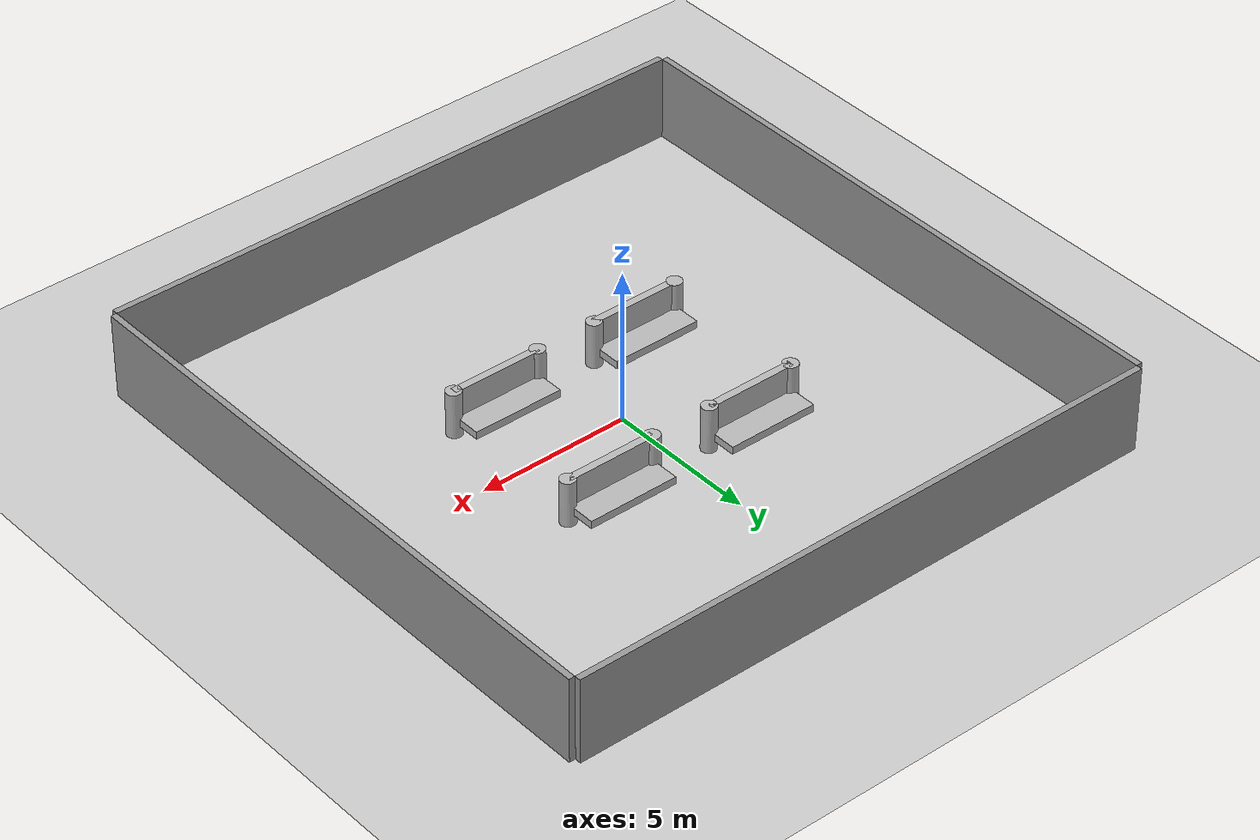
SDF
<sdf version="1.7">
 <world name="default">
  <light name="sun" type="directional">
   <pose>0 0 10 0 -0 0</pose>
   <diffuse>0.8 0.8 0.8 1</diffuse>
   <specular>0.2 0.2 0.2 1</specular>
   <attenuation>
    <range>1000</range>
    <constant>0.9</constant>
    <linear>0.01</linear>
    <quadratic>0.001</quadratic>
   </attenuation>
   <direction>-0.5 0.1 -0.9</direction>
   <spot><inner_angle>0</inner_angle><outer_angle>0</outer_angle><falloff>0</falloff></spot>
  </light>
  <model name="ground_plane">
   <static>1</static>
   <link name="link">
    <collision name="collision">
     <geometry><plane><normal>0 0 1</normal><size>100 100</size></plane></geometry>
     <surface><friction><ode><mu>100</mu><mu2>50</mu2></ode></friction></surface>
    </collision>
    <visual name="visual">
     <cast_shadows>0</cast_shadows>
     <geometry><plane><normal>0 0 1</normal><size>100 100</size></plane></geometry>
     <material>
      <script><uri>file://media/materials/scripts/gazebo.material</uri><name>Gazebo/Grey</name></script>
     </material>
    </visual>
   </link>
  </model>
  <gravity>0 0 -9.8</gravity>
  <magnetic_field>6e-06 2.3e-05 -4.2e-05</magnetic_field>
  <atmosphere type="adiabatic"/>
  <physics type="ode">
   <max_step_size>0.001</max_step_size>
   <real_time_factor>1</real_time_factor>
   <real_time_update_rate>1000</real_time_update_rate>
  </physics>
  <scene><ambient>0.4 0.4 0.4 1</ambient><background>0.7 0.7 0.7 1</background><shadows>1</shadows></scene>
  <spherical_coordinates>
   <surface_model>EARTH_WGS84</surface_model>
   <latitude_deg>0</latitude_deg>
   <longitude_deg>0</longitude_deg>
   <elevation>0</elevation>
   <heading_deg>0</heading_deg>
  </spherical_coordinates>
  <model name="grey_wall_west">
   <static>1</static>
   <link name="link">
    <pose>0 0 1.4 0 -0 0</pose>
    <collision name="collision"><geometry><box><size>20 0.2 2.8</size></box></geometry></collision>
    <visual name="visual">
     <cast_shadows>0</cast_shadows>
     <geometry><box><size>20 0.2 2.8</size></box></geometry>
     <material>
      <script>
       <uri>model://grey_wall/materials/scripts</uri>
       <uri>model://grey_wall/materials/textures</uri>
       <name>vrc/grey_wall</name>
      </script>
     </material>
    </visual>
   </link>
   <pose>0 10.1 0 0 -0 0</pose>
  </model>
  <model name="grey_wall_east">
   <static>1</static>
   <link name="link">
    <pose>0 0 1.4 0 -0 0</pose>
    <collision name="collision"><geometry><box><size>20 0.2 2.8</size></box></geometry></collision>
    <visual name="visual">
     <cast_shadows>0</cast_shadows>
     <geometry><box><size>20 0.2 2.8</size></box></geometry>
     <material>
      <script>
       <uri>model://grey_wall/materials/scripts</uri>
       <uri>model://grey_wall/materials/textures</uri>
       <name>vrc/grey_wall</name>
      </script>
     </material>
    </visual>
   </link>
   <pose>0 -10.1 0 0 -0 0</pose>
  </model>
  <model name="grey_wall_north">
   <static>1</static>
   <link name="link">
    <pose>0 0 1.4 0 -0 0</pose>
    <collision name="collision"><geometry><box><size>20 0.2 2.8</size></box></geometry></collision>
    <visual name="visual">
     <cast_shadows>0</cast_shadows>
     <geometry><box><size>20 0.2 2.8</size></box></geometry>
     <material>
      <script>
       <uri>model://grey_wall/materials/scripts</uri>
       <uri>model://grey_wall/materials/textures</uri>
       <name>vrc/grey_wall</name>
      </script>
     </material>
    </visual>
   </link>
   <pose>10.1 0 0 0 -0 1.5708</pose>
  </model>
  <model name="grey_wall_south">
   <static>1</static>
   <link name="link">
    <pose>0 0 1.4 0 -0 0</pose>
    <collision name="collision"><geometry><box><size>20 0.2 2.8</size></box></geometry></collision>
    <visual name="visual">
     <cast_shadows>0</cast_shadows>
     <geometry><box><size>20 0.2 2.8</size></box></geometry>
     <material>
      <script>
       <uri>model://grey_wall/materials/scripts</uri>
       <uri>model://grey_wall/materials/textures</uri>
       <name>vrc/grey_wall</name>
      </script>
     </material>
    </visual>
   </link>
   <pose>-10.1 0 0 0 -0 1.5708</pose>
  </model>
  <model name="proj_model_clone_0">
   <pose>-4.06 -2.51479 0.749992 -1e-06 -3e-06 -4e-06</pose>
   <static>0</static>
   <link name="link">
    <inertial>
     <mass>1</mass>
     <inertia><ixx>0.083</ixx><ixy>0</ixy><ixz>0</ixz><iyy>0.083</iyy><iyz>0</iyz><izz>0.083</izz></inertia>
    </inertial>
    <collision name="collision1">
     <geometry><cylinder><radius>0.25</radius><length>1.5</length></cylinder></geometry>
    </collision>
    <collision name="collision2">
     <pose>1.5 0 0.25 0 -0 0</pose>
     <geometry><box><size>3 0.25 1</size></box></geometry>
    </collision>
    <collision name="collision3">
     <pose>3 0 0 0 -0 0</pose>
     <geometry><cylinder><radius>0.25</radius><length>1.5</length></cylinder></geometry>
    </collision>
    <collision name="collision4">
     <pose>1.5 0.5 -0.25 0 -0 0</pose>
     <geometry><box><size>3 1 0.25</size></box></geometry>
    </collision>
    <visual name="visual1">
     <geometry><cylinder><radius>0.25</radius><length>1.5</length></cylinder></geometry>
    </visual>
    <visual name="visual2">
     <pose>1.5 0 0.25 0 -0 0</pose>
     <geometry><box><size>3 0.25 1</size></box></geometry>
    </visual>
    <visual name="visual3">
     <pose>3 0 0 0 -0 0</pose>
     <geometry><cylinder><radius>0.25</radius><length>1.5</length></cylinder></geometry>
    </visual>
    <visual name="visual4">
     <pose>1.5 0.5 -0.25 0 -0 0</pose>
     <geometry><box><size>3 1 0.25</size></box></geometry>
    </visual>
   </link>
  </model>
  <model name="proj_model_clone_1">
   <pose>-3.98873 2.5341 0.749992 -1e-06 -3e-06 -4e-06</pose>
   <static>0</static>
   <link name="link">
    <inertial>
     <mass>1</mass>
     <inertia><ixx>0.083</ixx><ixy>0</ixy><ixz>0</ixz><iyy>0.083</iyy><iyz>0</iyz><izz>0.083</izz></inertia>
    </inertial>
    <collision name="collision1">
     <geometry><cylinder><radius>0.25</radius><length>1.5</length></cylinder></geometry>
    </collision>
    <collision name="collision2">
     <pose>1.5 0 0.25 0 -0 0</pose>
     <geometry><box><size>3 0.25 1</size></box></geometry>
    </collision>
    <collision name="collision3">
     <pose>3 0 0 0 -0 0</pose>
     <geometry><cylinder><radius>0.25</radius><length>1.5</length></cylinder></geometry>
    </collision>
    <collision name="collision4">
     <pose>1.5 0.5 -0.25 0 -0 0</pose>
     <geometry><box><size>3 1 0.25</size></box></geometry>
    </collision>
    <visual name="visual1">
     <geometry><cylinder><radius>0.25</radius><length>1.5</length></cylinder></geometry>
    </visual>
    <visual name="visual2">
     <pose>1.5 0 0.25 0 -0 0</pose>
     <geometry><box><size>3 0.25 1</size></box></geometry>
    </visual>
    <visual name="visual3">
     <pose>3 0 0 0 -0 0</pose>
     <geometry><cylinder><radius>0.25</radius><length>1.5</length></cylinder></geometry>
    </visual>
    <visual name="visual4">
     <pose>1.5 0.5 -0.25 0 -0 0</pose>
     <geometry><box><size>3 1 0.25</size></box></geometry>
    </visual>
   </link>
  </model>
  <model name="proj_model_clone_2">
   <pose>0.992199 -2.53905 0.749992 -1e-06 -3e-06 -4e-06</pose>
   <static>0</static>
   <link name="link">
    <inertial>
     <mass>1</mass>
     <inertia><ixx>0.083</ixx><ixy>0</ixy><ixz>0</ixz><iyy>0.083</iyy><iyz>0</iyz><izz>0.083</izz></inertia>
    </inertial>
    <collision name="collision1">
     <geometry><cylinder><radius>0.25</radius><length>1.5</length></cylinder></geometry>
    </collision>
    <collision name="collision2">
     <pose>1.5 0 0.25 0 -0 0</pose>
     <geometry><box><size>3 0.25 1</size></box></geometry>
    </collision>
    <collision name="collision3">
     <pose>3 0 0 0 -0 0</pose>
     <geometry><cylinder><radius>0.25</radius><length>1.5</length></cylinder></geometry>
    </collision>
    <collision name="collision4">
     <pose>1.5 0.5 -0.25 0 -0 0</pose>
     <geometry><box><size>3 1 0.25</size></box></geometry>
    </collision>
    <visual name="visual1">
     <geometry><cylinder><radius>0.25</radius><length>1.5</length></cylinder></geometry>
    </visual>
    <visual name="visual2">
     <pose>1.5 0 0.25 0 -0 0</pose>
     <geometry><box><size>3 0.25 1</size></box></geometry>
    </visual>
    <visual name="visual3">
     <pose>3 0 0 0 -0 0</pose>
     <geometry><cylinder><radius>0.25</radius><length>1.5</length></cylinder></geometry>
    </visual>
    <visual name="visual4">
     <pose>1.5 0.5 -0.25 0 -0 0</pose>
     <geometry><box><size>3 1 0.25</size></box></geometry>
    </visual>
   </link>
  </model>
  <model name="proj_model_clone_3">
   <pose>1.05881 2.51083 0.749992 -1e-06 -3e-06 -4e-06</pose>
   <static>0</static>
   <link name="link">
    <inertial>
     <mass>1</mass>
     <inertia><ixx>0.083</ixx><ixy>0</ixy><ixz>0</ixz><iyy>0.083</iyy><iyz>0</iyz><izz>0.083</izz></inertia>
    </inertial>
    <collision name="collision1">
     <geometry><cylinder><radius>0.25</radius><length>1.5</length></cylinder></geometry>
    </collision>
    <collision name="collision2">
     <pose>1.5 0 0.25 0 -0 0</pose>
     <geometry><box><size>3 0.25 1</size></box></geometry>
    </collision>
    <collision name="collision3">
     <pose>3 0 0 0 -0 0</pose>
     <geometry><cylinder><radius>0.25</radius><length>1.5</length></cylinder></geometry>
    </collision>
    <collision name="collision4">
     <pose>1.5 0.5 -0.25 0 -0 0</pose>
     <geometry><box><size>3 1 0.25</size></box></geometry>
    </collision>
    <visual name="visual1">
     <geometry><cylinder><radius>0.25</radius><length>1.5</length></cylinder></geometry>
    </visual>
    <visual name="visual2">
     <pose>1.5 0 0.25 0 -0 0</pose>
     <geometry><box><size>3 0.25 1</size></box></geometry>
    </visual>
    <visual name="visual3">
     <pose>3 0 0 0 -0 0</pose>
     <geometry><cylinder><radius>0.25</radius><length>1.5</length></cylinder></geometry>
    </visual>
    <visual name="visual4">
     <pose>1.5 0.5 -0.25 0 -0 0</pose>
     <geometry><box><size>3 1 0.25</size></box></geometry>
    </visual>
   </link>
  </model>
 </world>
</sdf>
